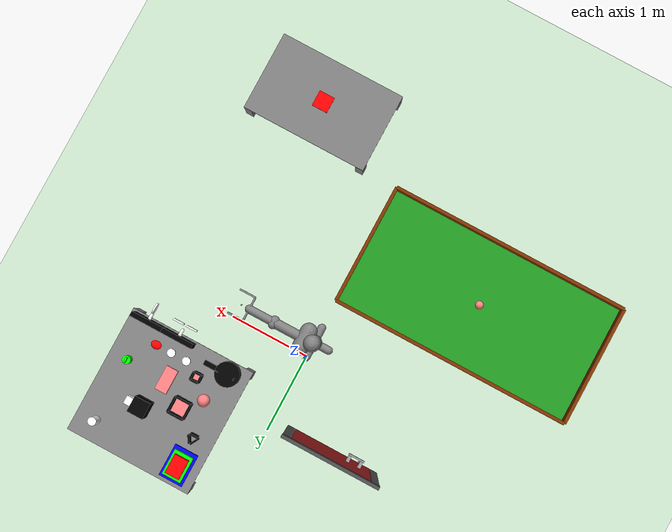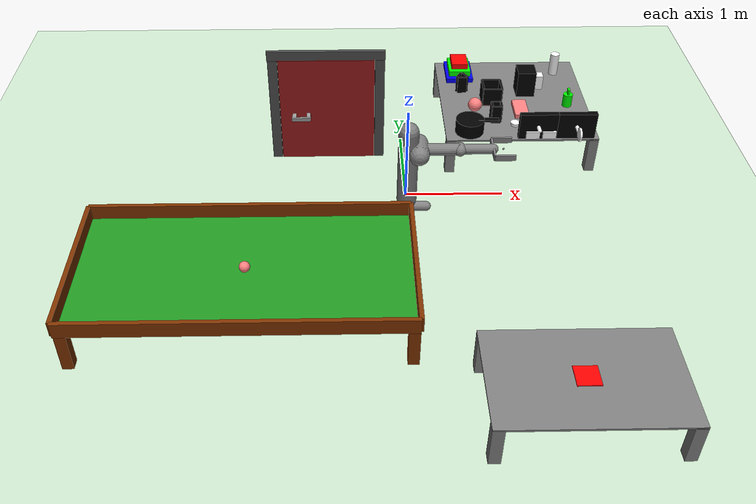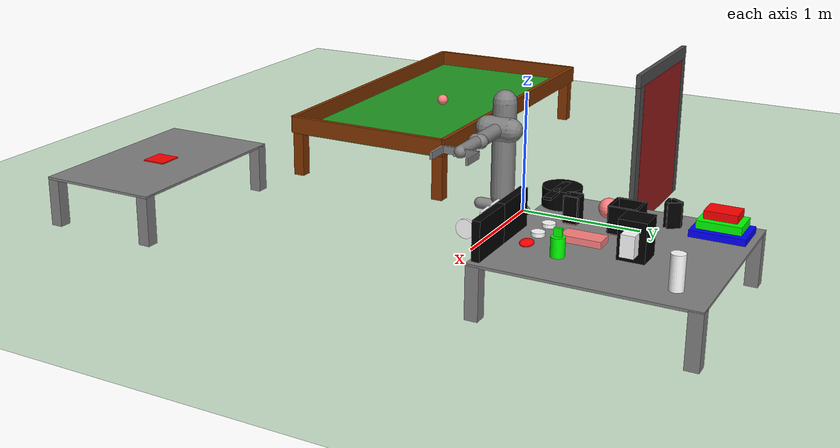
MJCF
<mujoco model="kitchen_world">
    <compiler inertiafromgeom="true" angle="radian" coordinate="local" />
    <custom>
      <numeric name="frame_skip" data="50" />
    </custom>
    <option timestep="0.001" gravity="0 0 0" iterations="1000" integrator="Euler" />
    <default>
        <joint armature="0.04" damping="10" limited="true" />
        <geom friction=".5 .1 .1" margin="0.002" condim="1" contype="0" conaffinity="0" />
    </default>
    <asset>
      <texture type="skybox" builtin="gradient" width="100" height="100" rgb1="1 1 1" rgb2="0.5 1 0" />
      <texture name="texgeom" type="cube" builtin="flat" mark="cross" width="127" height="1278" rgb1="0.8 0.6 0.4" rgb2="0.8 0.6 0.4" markrgb="1 1 1" random="0.01" />
      <texture name="texplane" type="2d" builtin="checker" rgb1="0 0 0" rgb2="0.8 0.8 0.8" width="100" height="100" />
      <material name='MatPlane' texture="texplane" shininess="1" texrepeat="30 30" specular="1"  reflectance="0.5" />
      <material name='geom' texture="texgeom" texuniform="true" />
    </asset>

  <worldbody>
    <light directional="true" cutoff="100" exponent="1" diffuse="1 1 1" specular=".1 .1 .1" pos="0 0 1.3" dir="-0 0 -1.3" />
    <geom name='floor' material="MatPlane" pos='0 0 -0.1' size='40 40 0.1' type='plane' conaffinity='1' rgba='0.8 0.9 0.8 1' condim='3' />
    <!--  ================= SWIMMER ================= /-->

    <body name="torso" pos="0 -0.188 0.7">
       <joint name="base_x" type="slide" pos="0 0 -0.5" axis="1 0 0" range="-200.2854 200.714602" limited="true" />
       <joint name="base_y" type="slide" pos="0 0 -0.5" axis="0 1 0" range="-200.2854 200.714602" limited="true" />

        <geom name="torso" type="capsule" fromto="0 0 -0.6 0 0 0.2" size="0.1" />
        <geom name="sp1" type="capsule" fromto="-0.2 0 -0.7 0.2 0 -0.7" size="0.05" />
        <geom name="sp2" type="capsule" fromto="0 -0.2 -0.7 0 0.2 -0.7" size="0.05" />
        <joint name="r_shoulder_pan_joint" type="hinge" pos="0 0 0" axis="0 0 1" range="-2.2854 1.714602" damping="100.0" />

        <body name="r_shoulder_lift_link" pos="0.1 0 0">
            <geom name="sl" type="capsule" fromto="0 -0.1 0 0 0.1 0" size="0.1" />
            <joint name="r_shoulder_lift_joint" type="hinge" pos="0 0 0" axis="0 1 0" range="-0.5236 1.3963" damping="100.0" />

            <body name="r_upper_arm_roll_link" pos="0 0 0">
                <geom name="uar" type="capsule" fromto="-0.1 0 0 0.1 0 0" size="0.02" />
                <joint name="r_upper_arm_roll_joint" type="hinge" pos="0 0 0" axis="1 0 0" range="-3.9 0.8" damping="1" />

                <body name="r_upper_arm_link" pos="0 0 0">
                    <geom name="ua" type="capsule" fromto="0 0 0 0.4 0 0" size="0.06" />

                    <body name="r_elbow_flex_link" pos="0.4 0 0">
                        <geom name="ef" type="capsule" fromto="0 -0.02 0 0.0 0.02 0" size="0.06" />
                        <joint name="r_elbow_flex_joint" type="hinge" pos="0 0 0" axis="0 1 0" range="-2.3213 0" damping="10.0" />

                        <body name="r_forearm_roll_link" pos="0 0 0">
                            <geom name="fr" type="capsule" fromto="-0.1 0 0 0.1 0 0" size="0.02" />
                            <joint name="r_forearm_roll_joint" type="hinge" limited="false" pos="0 0 0" axis="1 0 0" damping="1" />

                            <body name="r_forearm_link" pos="0 0 0">
                                <geom name="fa" type="capsule" fromto="0 0 0 0.321 0 0" size="0.05" />

                                <body name="r_wrist_flex_link" pos="0.321 0 0">
                                    <geom name="wf" type="capsule" fromto="0 -0.02 0 0 0.02 0" size="0.01" />
                                    <joint name="r_wrist_flex_joint" type="hinge" pos="0 0 0" axis="0 1 0" range="-2.094 0" damping="1" />

                                    <body name="r_wrist_roll_link" pos="0 0 0">
                                        <geom name="wr" type="capsule" fromto="-0.02 0 0 0.02 0 0" size="0.01" />
                                        <joint name="r_wrist_roll_joint" type="hinge" pos="0 0 0" limited="false" axis="1 0 0" damping="1" />

                                        <body name="r_gripper_palm_link" pos="0 0 0">

                                            <site name="gripper_pos" pos="0.1 0 0" size="0.01" />

                                            <body name="left_slide_body" pos="0.1 0.15 0">
                                                <joint name="left_slide" type="slide" pos="0 0 0" range="-0.15 0" damping="10.0" limited="true" axis="0 1 0"/>
                                                <geom name="leftbox" type="box" pos="0 0 0" size="0.1 0.01 0.03"/>
                                            </body>

                                            <geom name="backbox" type="box" size="0.01 0.15 0.03"/>

                                            <body name="right_slide_body" pos="0.1 -0.15 0">
                                                <joint name="right_slide" type="slide" pos="0 0 0" range="0 0.15" damping="10.0" limited="true" axis="0 1 0"/>
                                                <geom name="rightbox" type="box" pos="0 0 0" size="0.1 0.01 0.03"/>
                                            </body>

                                        </body>
                                    </body>
                                </body>
                            </body>
                        </body>
                    </body>
                </body>
            </body>
        </body>
    </body>

<body name="table_1" pos="1.25 1.25 0.35">
    <geom name="table_top1" type="box" pos="0 0 0" size="0.8 0.8 0.01"/>
    <geom name="leg11" type="box" pos="0.75 0.75 -0.2" size="0.05 0.05 0.2"/>
    <geom name="leg21" type="box" pos="0.75 -0.75 -0.2" size="0.05 0.05 0.2"/>
    <geom name="leg31" type="box" pos="-0.75 0.75 -0.2" size="0.05 0.05 0.2"/>
    <geom name="leg41" type="box" pos="-0.75 -0.75 -0.2" size="0.05 0.05 0.2"/>
</body>

<body name="cup_1" pos="1 0.8 0.38" >
    <geom name="cup_bottom1" type="box" pos="0 0 0" size="0.05 0.05 0.01" rgba='1 0.5 0.5 1'/>
    <geom name="cup_left1" type="box" pos="0.05 0 0.1" size="0.01 0.05 0.1" rgba='0 0 0 1'/>
    <geom name="cup_right1" type="box" pos="-0.05 0 0.1" size="0.01 0.05 0.1" rgba='0 0 0 1'/>
    <geom name="cup_front1" type="box" pos="0 0.05 0.1" size="0.05 0.01 0.1" rgba='0 0 0 1'/>
    <geom name="cup_back1" type="box" pos="0 -0.05 0.1" size="0.05 0.01 0.1" rgba='0 0 0 1'/>
</body>

<body name="cup_2" pos="1 1.2 0.38" >
    <geom name="cup_bottom2" type="box" pos="0 0 0" size="0.1 0.1 0.01" rgba='1 0.5 0.5 1'/>
    <geom name="cup_left2" type="box" pos="0.1 0 0.1" size="0.01 0.1 0.1" rgba='0 0 0 1'/>
    <geom name="cup_right2" type="box" pos="-0.1 0 0.1" size="0.01 0.1 0.1" rgba='0 0 0 1'/>
    <geom name="cup_front2" type="box" pos="0 0.1 0.1" size="0.1 0.01 0.1" rgba='0 0 0 1'/>
    <geom name="cup_back2" type="box" pos="0 -0.1 0.1" size="0.1 0.01 0.1" rgba='0 0 0 1'/>
</body>

<body name="block1" pos="1.3 1 0.38" >
    <geom name="block_geom" type="box" pos="0 0 0" size="0.075 0.15 0.03" rgba='1 0.5 0.5 1'/>
</body>

<body name="sphere1" pos="0.8 1 0.45" >
    <geom name="sphere_geom" type="sphere" pos="0 0 0" size="0.075" rgba='1 0.5 0.5 1'/>
</body>

<body name="saucepan1" pos="0.7 0.6 0.45" >
    <geom name="saucepan_base1" type="cylinder" pos="0 0 0" size="0.15 0.075" rgba='0 0 0 1'/>
    <geom name="saucepan_handle1" type="box" pos="0.1 0 0.065" size="0.2 0.03 0.01" rgba='0 0 0 1'/>
</body>

<body name="triangle_object1" pos="0.7 1.4 0.45" >
    <geom name="side1" type="box" pos="0 0 0" size="0.05 0.01 0.1" rgba='0 0 0 1'/>
    <geom name="side2" type="box" pos="-0.034 0.06 0" quat="0.866 0 0 0.5" size="0.05 0.01 0.1" rgba='0 0 0 1'/>
    <geom name="side3" type="box" pos="0.034 0.06 0" quat="0.866 0 0 -0.5" size="0.05 0.01 0.1" rgba='0 0 0 1'/>
</body>

<body name="handle_object" pos="1.4 1.4 0.5" >
    <geom name="handle_base" type="box" pos="0 0 0" size="0.1 0.1 0.15" rgba='0 0 0 1'/>
    <geom name="handle_geom" type="box" pos="0.12 0 0" size="0.07 0.05 0.08" rgba='1 1 1 1'/>
</body>

<body name="disc1" pos="1.4 0.7 0.4" >
    <geom name="disc_geom1" type="cylinder" pos="0 0 0" size="0.05 0.015" rgba='1 1 1 1'/>
</body>

<body name="disc2" pos="1.2 0.7 0.4" >
    <geom name="disc_geom2" type="cylinder" pos="0 0 0" size="0.05 0.015" rgba='1 1 1 1'/>
</body>

<body name="ellipsoid1" pos="1.6 0.7 0.4" >
    <geom name="ellipsoid_geom1" type="ellipsoid" pos="0 0 0" size="0.065 0.05 0.025" rgba='1 0 0 1'/>
</body>

<body name="cylinder1" pos="1.8 1.8 0.48" >
    <geom name="cylinder_geom1" type="cylinder" pos="0 0 0" size="0.05 0.13" rgba='1 1 1 1'/>
</body>

<body name="door_type1" pos="1.8 0.5 0.5" >
    <geom name="backboard_door1" type="box" pos="0 0 0" size="0.2 0.03 0.15" rgba='0 0 0 1'/>
    <body name="key_door1" pos="0 -0.03 0">
        <geom name="handle_door1" type="capsule" fromto="0 0 0 0 -0.07 0" size="0.02"  rgba='1 1 1 1'/>
        <geom name="handle_end_door1" type="cylinder" quat="0.707 0 -0.707 0" pos="0 -0.14 0" size="0.07 0.01" rgba='1 1 1 1'/>
        <joint name="handle_joint_door1" type="hinge" pos="0 0 0" axis="0 1 0" range="0 1.57" damping="100.0" />
    </body>
</body>

<body name="stackplate1" pos="0.7 1.8 0.38" >
    <geom name="stackplate1_geom" type="box" pos="0 0 0" size="0.15 0.2 0.03" rgba='0 0 1 1'/>
</body>

<body name="stackplate2" pos="0.7 1.8 0.45" >
    <geom name="stackplate2_geom" type="box" pos="0 0 0" size="0.12 0.16 0.03" rgba='0 1 0 1'/>
</body>

<body name="stackplate3" pos="0.7 1.8 0.52" >
    <geom name="stackplate3_geom" type="box" pos="0 0 0" size="0.09 0.12 0.03" rgba='1 0 0 1'/>
</body>

<body name="door_type2" pos="1.4 0.5 0.5" >
    <geom name="backboard_door2" type="box" pos="0 0 0" size="0.2 0.03 0.15" rgba='0 0 0 1'/>
    <body name="key_door2" pos="0 -0.03 0">
        <geom name="handle_door2" type="capsule" fromto="0 0 0 0 -0.07 0" size="0.02"  rgba='1 1 1 1'/>
        <geom name="handle_right_door2" type="box" pos="0.085 -0.14 0" size="0.07 0.01 0.04" rgba='1 1 1 1'/>
        <geom name="handle_left_door2" type="box" pos="-0.085 -0.14 0" size="0.07 0.01 0.04" rgba='1 1 1 1'/>
        <joint name="handle_joint_door2" type="hinge" pos="0 0 0" axis="0 1 0" range="0 1.57" damping="100.0" />
    </body>
</body>

<body name="door_opening_tool2" pos="1.8 1.0 0.5" >
    <geom name="door_opening_tool2_geom" type="cylinder" pos="0 0 0" size="0.05 0.07" rgba='0 1 0 1'/>
    <geom name="door_opening_tooltip2_geom" type="box" pos="0.0 0 0.09" size="0.01 0.03 0.04" rgba='0 1 0 1'/>
</body>

<body name="table_2" pos="-1.5 -1.5 0.35" >
    <geom name="table_top2" type="box" pos="0 0 0" size="1.5 0.75 0.01" rgba='0.13 0.6 0.13 1'/>
    <geom name="leg12" type="box" pos="1.45 0.7 -0.2" size="0.05 0.05 0.2" rgba='0.5 0.2 0 1'/>
    <geom name="leg22" type="box" pos="1.45 -0.7 -0.2" size="0.05 0.05 0.2" rgba='0.5 0.2 0 1'/>
    <geom name="leg32" type="box" pos="-1.45 0.7 -0.2" size="0.05 0.05 0.2" rgba='0.5 0.2 0 1'/>
    <geom name="leg42" type="box" pos="-1.45 -0.7 -0.2" size="0.05 0.05 0.2" rgba='0.5 0.2 0 1'/>
    <geom name="siderail_left2" type="box" pos="0 0.75 0.075" size="1.5 0.02 0.075" rgba='0.5 0.2 0 1'/>
    <geom name="siderail_right2" type="box" pos="0 -0.75 0.075" size="1.5 0.02 0.075" rgba='0.5 0.2 0 1'/>
    <geom name="siderail_top2" type="box" pos="1.5 0 0.075" size="0.02 0.75 0.075" rgba='0.5 0.2 0 1'/>
    <geom name="siderail_bottom2" type="box" pos="-1.5 0 0.075" size="0.02 0.75 0.075" rgba='0.5 0.2 0 1'/>
</body>

<body name="sphere_billiards" pos="-1.5 -1.5 0.4" >
    <geom name="sphere_billards_geom" type="sphere" pos="0 0 0" size="0.05" rgba='1 0.5 0.5 1'/>
</body>

<body name="full_door_3" pos="0 0 0">
<body name="door_frame" pos="-0.80 0.85 0.50" >
    <geom name="frame_left" rgba="0.3 0.3 0.3 1" type="box" size="0.05 0.02 0.60" pos="-0.555 0.0 0.00" contype="1" conaffinity="1" />
    <geom name="frame_right" rgba="0.3 0.3 0.3 1" type="box" size="0.05 0.02 0.60" pos="0.555 0.0 0.00" contype="1" conaffinity="1" />
    <geom name="frame_top" rgba="0.3 0.3 0.3 1" type="box" size="0.61 0.02 0.05" pos="0.0 0.0 0.655" contype="1" conaffinity="1" />
</body>

<body name="door" pos="-0.80 0.85 0.50">
    <geom name="door" rgba="0.6 0.1 0.1 1" type="box" size="0.5 0.02 0.6" contype="1" conaffinity="1" />
    <joint name="door_hinge" type="hinge" pos="0.45 0.0 0.0" axis="0 0 1" range="0 2" damping="10.0" />

    <body name="door_handle" pos="-0.45 -0.05 -0.25">
        <geom name="handle_left" type="box" rgba="0.6 0.6 0.6 1" pos="0.1 0 0.2" size="0.02 0.05 0.02" contype="1" conaffinity="1" />
        <geom name="handle_right" type="box" rgba="0.6 0.6 0.6 1" pos="0.25 0 0.2" size="0.02 0.05 0.02" contype="1" conaffinity="1" />
        <site name="handle" pos="0.13 -0.03 0.17" size="0.01" />
        <geom name="handle_center" type="box" rgba="0.6 0.6 0.6 1" pos="0.175 -0.06 0.2" size="0.1 0.01 0.02" contype="1" conaffinity="1" />
    </body>
</body>
</body>

<body name="table_3" pos="1.25 -2.75 0.35">
    <geom name="table_top3" type="box" pos="0 0 0" size="0.8 0.5 0.01"/>
    <geom name="leg13" type="box" pos="0.75 0.45 -0.2" size="0.05 0.05 0.2"/>
    <geom name="leg23" type="box" pos="0.75 -0.45 -0.2" size="0.05 0.05 0.2"/>
    <geom name="leg33" type="box" pos="-0.75 0.45 -0.2" size="0.05 0.05 0.2"/>
    <geom name="leg43" type="box" pos="-0.75 -0.45 -0.2" size="0.05 0.05 0.2"/>
</body>

<body name="goal_location" pos="1.25 -2.75 0.36">
    <geom name="goal_geom1" type="box" pos="0 0 0" rgba="1 0 0 1" size="0.1 0.1 0.01"/>
    <site name="geom_site1" pos="0 0 0" size="0.01" />
</body>

  </worldbody>
  <tendon>
        <fixed name="gripper">
            <joint joint="left_slide"  coef="0.1"/>
            <joint joint="right_slide"  coef="0.1"/>
        </fixed>
  </tendon>
  <actuator>
    <motor joint="base_x" ctrlrange="-2.0 2.0" ctrllimited="true" />
    <motor joint="base_y" ctrlrange="-2.0 2.0" ctrllimited="true" />
    <motor tendon='gripper' ctrlrange="-2.0 2.0" name='gripper_actuator'/>
    <motor joint="r_shoulder_pan_joint" ctrlrange="-10.0 10.0" ctrllimited="true" />
    <motor joint="r_shoulder_lift_joint" ctrlrange="-10.0 10.0" ctrllimited="true" />
    <motor joint="r_upper_arm_roll_joint" ctrlrange="-10.0 10.0" ctrllimited="true" />
    <motor joint="r_elbow_flex_joint" ctrlrange="-10.0 10.0" ctrllimited="true" />
    <motor joint="r_forearm_roll_joint" ctrlrange="-10.0 10.0" ctrllimited="true" />
    <motor joint="r_wrist_flex_joint" ctrlrange="-10.0 10.0" ctrllimited="true" />
    <motor joint="r_wrist_roll_joint" ctrlrange="-10.0 10.0" ctrllimited="true" />
  </actuator>
</mujoco>
